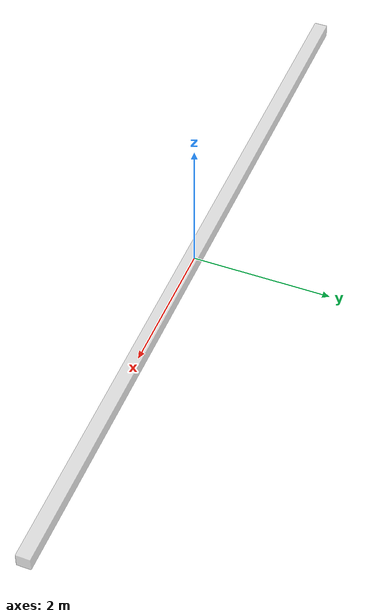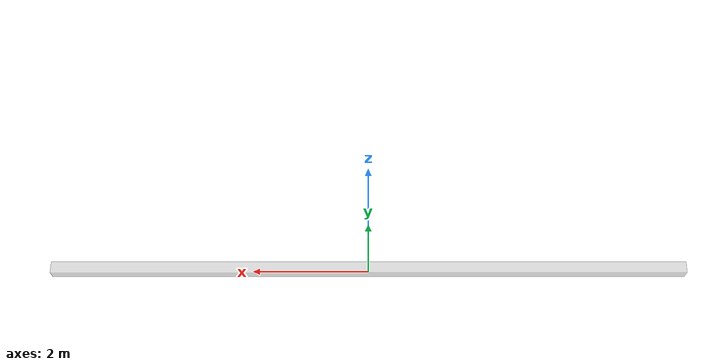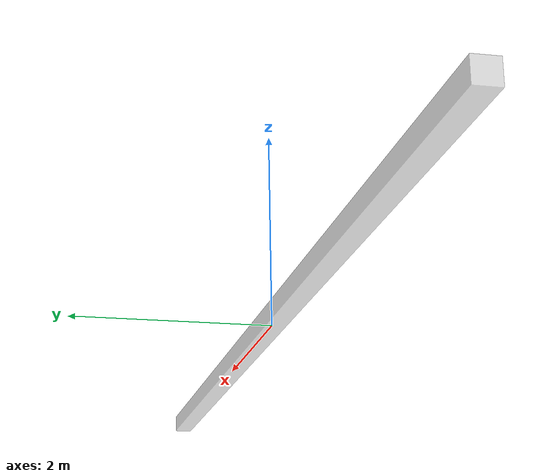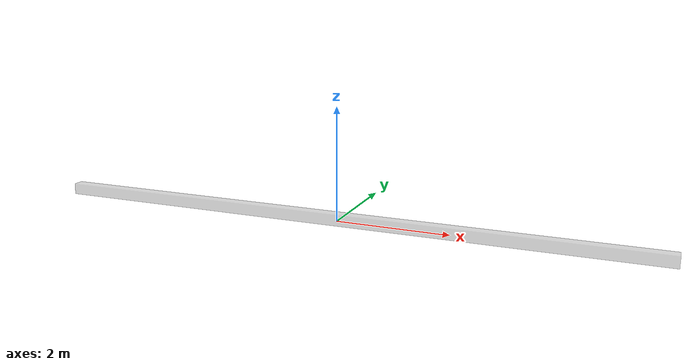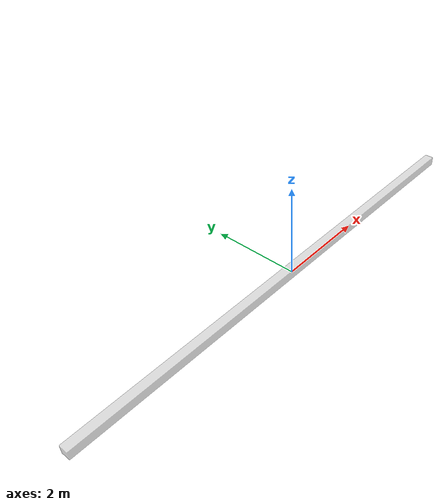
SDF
<?xml version="1.0" ?>

<sdf version="1.5">
  <model name="wood_block_144_10_10cm">
    <static>true</static>
    <link name="link">
      <pose>0 0 0.05 0 0 0</pose>

      <inertial>
        <mass>1000</mass>
      </inertial>

      <collision name="collision">
        <geometry>
          <box>
            <size>11.00 0.2 0.2</size>
          </box>
        </geometry>
        <surface>
          <contact>
            <!-- Red Pine coefficients for longitudinal axis of the wood
                 according to:
                 http://www.fpl.fs.fed.us/documnts/fplgtr/fplgtr113/ch04.pdf -->

            <poissons_ratio>0.347</poissons_ratio>
            <elastic_modulus>8.8e+09</elastic_modulus>
            <ode>
              <kp>100000</kp>
              <kd>1</kd>
              <max_vel>1.0</max_vel>
              <min_depth>0.001</min_depth>
            </ode>
          </contact>
          <friction>
            <torsional>
              <coefficient>1.0</coefficient>
              <use_patch_radius>0</use_patch_radius>
              <surface_radius>0.05</surface_radius>
            </torsional>
          </friction>
        </surface>
      </collision>

      <visual name="visual">
        <geometry>
          <box>
            <size>11.0 0.2 0.2</size>
          </box>
        </geometry>
        <material>
          <script>
 		        <uri>model://sim_world/meshes/transparent/scripts</uri>
            <uri>model://sim_world/meshes/transparent/textures</uri>
            <name>vrc/transparent</name>
         </script>
        </material>
      </visual>

    </link>
  </model>
</sdf>
